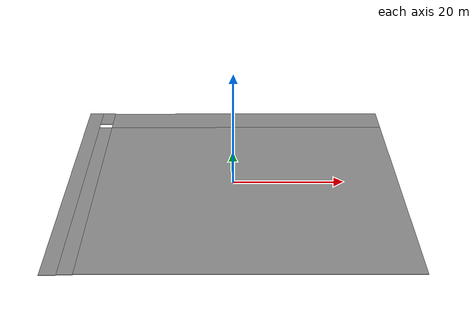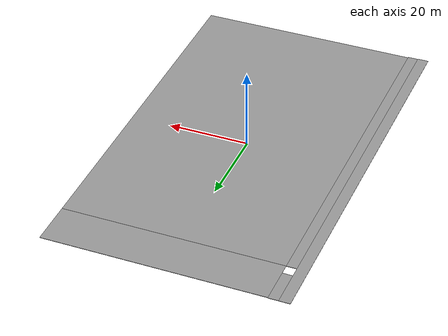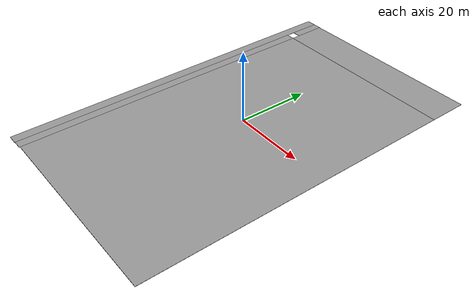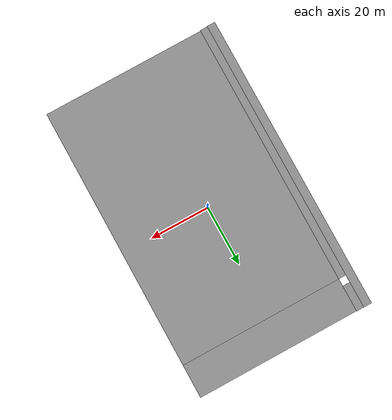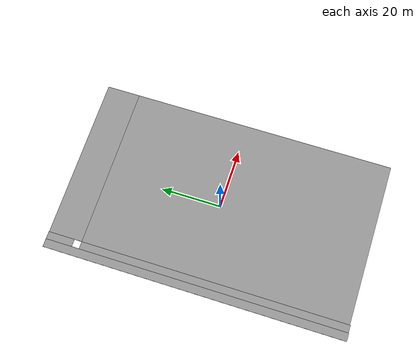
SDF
<?xml version='1.0'?>
<sdf version='1.7'>
  <model name='floor'>
    <link name='Floor_4'>
      <pose>1e-06 -3e-06 0.015 0 -0 0</pose>
      <self_collide>0</self_collide>
      <enable_wind>0</enable_wind>
      <kinematic>0</kinematic>
      <gravity>1</gravity>
      <inertial>
        <mass>1</mass>
        <pose>0 0 0 0 -0 0</pose>
        <inertia>
          <ixx>1</ixx>
          <ixy>0</ixy>
          <ixz>0</ixz>
          <iyy>1</iyy>
          <iyz>0</iyz>
          <izz>1</izz>
        </inertia>
      </inertial>
      <visual name='Floor_4_Visual_1'>
        <pose>2.65 -5.4875 0.05 0 -0 0</pose>
        <geometry>
          <box>
            <size>54.8 88.55 0.1</size>
          </box>
        </geometry>
        <material>
          <script>
            <uri>file://media/materials/scripts/gazebo.material</uri>
            <name>Gazebo/Grey</name>
          </script>
          <ambient>1 1 1 1</ambient>
          <shader type='pixel'>
            <normal_map>__default__</normal_map>
          </shader>
          <diffuse>0.7 0.7 0.7 1</diffuse>
          <specular>0.01 0.01 0.01 1</specular>
          <emissive>0 0 0 1</emissive>
        </material>
        <meta>
          <layer>0</layer>
        </meta>
        <transparency>0</transparency>
        <cast_shadows>1</cast_shadows>
      </visual>
      <visual name='Floor_4_Visual_3'>
        <pose>-26.0025 45.7 0.05 0 -0 0</pose>
        <geometry>
          <box>
            <size>2.515 8.8 0.1</size>
          </box>
        </geometry>
        <material>
          <script>
            <uri>file://media/materials/scripts/gazebo.material</uri>
            <name>Gazebo/Grey</name>
          </script>
          <ambient>1 1 1 1</ambient>
          <shader type='pixel'>
            <normal_map>__default__</normal_map>
          </shader>
          <diffuse>0.7 0.7 0.7 1</diffuse>
          <specular>0.01 0.01 0.01 1</specular>
          <emissive>0 0 0 1</emissive>
        </material>
        <meta>
          <layer>0</layer>
        </meta>
        <transparency>0</transparency>
        <cast_shadows>1</cast_shadows>
      </visual>
      <visual name='ModelPreview_8::Floor_4::visual_4'>
        <pose>-26.0025 -5.6 0.05 0 -0 0</pose>
        <geometry>
          <box>
            <size>2.55 88.8 0.1</size>
          </box>
        </geometry>
        <material>
          <script>
            <uri>file://media/materials/scripts/gazebo.material</uri>
            <name>Gazebo/Grey</name>
          </script>
          <ambient>1 1 1 1</ambient>
          <shader type='pixel'>
            <normal_map>__default__</normal_map>
          </shader>
          <diffuse>0.7 0.7 0.7 1</diffuse>
          <specular>0.01 0.01 0.01 1</specular>
          <emissive>0 0 0 1</emissive>
        </material>
        <meta>
          <layer>0</layer>
        </meta>
        <transparency>0</transparency>
        <cast_shadows>1</cast_shadows>
      </visual>
      <visual name='Floor_4_Visual_2'>
        <pose>2.65 44.39 0.05 0 -0 0</pose>
        <geometry>
          <box>
            <size>54.8 11.205 0.1</size>
          </box>
        </geometry>
        <material>
          <script>
            <uri>file://media/materials/scripts/gazebo.material</uri>
            <name>Gazebo/Grey</name>
          </script>
          <ambient>1 1 1 1</ambient>
          <shader type='pixel'>
            <normal_map>__default__</normal_map>
          </shader>
          <diffuse>0.7 0.7 0.7 1</diffuse>
          <specular>0.01 0.01 0.01 1</specular>
          <emissive>0 0 0 1</emissive>
        </material>
        <meta>
          <layer>0</layer>
        </meta>
        <transparency>0</transparency>
        <cast_shadows>1</cast_shadows>
      </visual>
      <visual name='Floor_4_Visual_0'>
        <pose>-28.63 0 0.05 0 -0 0</pose>
        <geometry>
          <box>
            <size>2.75 100.232 0.1</size>
          </box>
        </geometry>
        <material>
          <script>
            <uri>file://media/materials/scripts/gazebo.material</uri>
            <name>Gazebo/Grey</name>
          </script>
          <ambient>1 1 1 1</ambient>
          <shader type='pixel'>
            <normal_map>__default__</normal_map>
          </shader>
          <diffuse>0.7 0.7 0.7 1</diffuse>
          <specular>0.01 0.01 0.01 1</specular>
          <emissive>0 0 0 1</emissive>
        </material>
        <meta>
          <layer>0</layer>
        </meta>
        <transparency>0</transparency>
        <cast_shadows>1</cast_shadows>
      </visual>
      <collision name='Floor_4_Collision_1'>
        <laser_retro>0</laser_retro>
        <max_contacts>10</max_contacts>
        <pose>1.345 -5.4875 0.05 0 -0 0</pose>
        <geometry>
          <box>
            <size>57.2 88.55 0.1</size>
          </box>
        </geometry>
        <surface>
          <friction>
            <ode>
              <mu>1</mu>
              <mu2>1</mu2>
              <fdir1>0 0 0</fdir1>
              <slip1>0</slip1>
              <slip2>0</slip2>
            </ode>
            <torsional>
              <coefficient>1</coefficient>
              <patch_radius>0</patch_radius>
              <surface_radius>0</surface_radius>
              <use_patch_radius>1</use_patch_radius>
              <ode>
                <slip>0</slip>
              </ode>
            </torsional>
          </friction>
          <bounce>
            <restitution_coefficient>0</restitution_coefficient>
            <threshold>1e+06</threshold>
          </bounce>
          <contact>
            <collide_without_contact>0</collide_without_contact>
            <collide_without_contact_bitmask>1</collide_without_contact_bitmask>
            <collide_bitmask>1</collide_bitmask>
            <ode>
              <soft_cfm>0</soft_cfm>
              <soft_erp>0.2</soft_erp>
              <kp>1e+13</kp>
              <kd>1</kd>
              <max_vel>0.01</max_vel>
              <min_depth>0</min_depth>
            </ode>
            <bullet>
              <split_impulse>1</split_impulse>
              <split_impulse_penetration_threshold>-0.01</split_impulse_penetration_threshold>
              <soft_cfm>0</soft_cfm>
              <soft_erp>0.2</soft_erp>
              <kp>1e+13</kp>
              <kd>1</kd>
            </bullet>
          </contact>
        </surface>
      </collision>
      <collision name='Floor_4_Collision_0'>
        <laser_retro>0</laser_retro>
        <max_contacts>10</max_contacts>
        <pose>-28.63 0 0.05 0 -0 0</pose>
        <geometry>
          <box>
            <size>2.74 100.232 0.1</size>
          </box>
        </geometry>
        <surface>
          <friction>
            <ode>
              <mu>1</mu>
              <mu2>1</mu2>
              <fdir1>0 0 0</fdir1>
              <slip1>0</slip1>
              <slip2>0</slip2>
            </ode>
            <torsional>
              <coefficient>1</coefficient>
              <patch_radius>0</patch_radius>
              <surface_radius>0</surface_radius>
              <use_patch_radius>1</use_patch_radius>
              <ode>
                <slip>0</slip>
              </ode>
            </torsional>
          </friction>
          <bounce>
            <restitution_coefficient>0</restitution_coefficient>
            <threshold>1e+06</threshold>
          </bounce>
          <contact>
            <collide_without_contact>0</collide_without_contact>
            <collide_without_contact_bitmask>1</collide_without_contact_bitmask>
            <collide_bitmask>1</collide_bitmask>
            <ode>
              <soft_cfm>0</soft_cfm>
              <soft_erp>0.2</soft_erp>
              <kp>1e+13</kp>
              <kd>1</kd>
              <max_vel>0.01</max_vel>
              <min_depth>0</min_depth>
            </ode>
            <bullet>
              <split_impulse>1</split_impulse>
              <split_impulse_penetration_threshold>-0.01</split_impulse_penetration_threshold>
              <soft_cfm>0</soft_cfm>
              <soft_erp>0.2</soft_erp>
              <kp>1e+13</kp>
              <kd>1</kd>
            </bullet>
          </contact>
        </surface>
      </collision>
      <collision name='Floor_4_Collision_2'>
        <laser_retro>0</laser_retro>
        <max_contacts>10</max_contacts>
        <pose>2.65 44.39 0.05 0 -0 0</pose>
        <geometry>
          <box>
            <size>54.8 11.205 0.1</size>
          </box>
        </geometry>
        <surface>
          <friction>
            <ode>
              <mu>1</mu>
              <mu2>1</mu2>
              <fdir1>0 0 0</fdir1>
              <slip1>0</slip1>
              <slip2>0</slip2>
            </ode>
            <torsional>
              <coefficient>1</coefficient>
              <patch_radius>0</patch_radius>
              <surface_radius>0</surface_radius>
              <use_patch_radius>1</use_patch_radius>
              <ode>
                <slip>0</slip>
              </ode>
            </torsional>
          </friction>
          <bounce>
            <restitution_coefficient>0</restitution_coefficient>
            <threshold>1e+06</threshold>
          </bounce>
          <contact>
            <collide_without_contact>0</collide_without_contact>
            <collide_without_contact_bitmask>1</collide_without_contact_bitmask>
            <collide_bitmask>1</collide_bitmask>
            <ode>
              <soft_cfm>0</soft_cfm>
              <soft_erp>0.2</soft_erp>
              <kp>1e+13</kp>
              <kd>1</kd>
              <max_vel>0.01</max_vel>
              <min_depth>0</min_depth>
            </ode>
            <bullet>
              <split_impulse>1</split_impulse>
              <split_impulse_penetration_threshold>-0.01</split_impulse_penetration_threshold>
              <soft_cfm>0</soft_cfm>
              <soft_erp>0.2</soft_erp>
              <kp>1e+13</kp>
              <kd>1</kd>
            </bullet>
          </contact>
        </surface>
      </collision>
      <collision name='Floor_4_Collision_3'>
        <laser_retro>0</laser_retro>
        <max_contacts>10</max_contacts>
        <pose>-26.0025 45.7 0.05 0 -0 0</pose>
        <geometry>
          <box>
            <size>2.515 8.8 0.1</size>
          </box>
        </geometry>
        <surface>
          <friction>
            <ode>
              <mu>1</mu>
              <mu2>1</mu2>
              <fdir1>0 0 0</fdir1>
              <slip1>0</slip1>
              <slip2>0</slip2>
            </ode>
            <torsional>
              <coefficient>1</coefficient>
              <patch_radius>0</patch_radius>
              <surface_radius>0</surface_radius>
              <use_patch_radius>1</use_patch_radius>
              <ode>
                <slip>0</slip>
              </ode>
            </torsional>
          </friction>
          <bounce>
            <restitution_coefficient>0</restitution_coefficient>
            <threshold>1e+06</threshold>
          </bounce>
          <contact>
            <collide_without_contact>0</collide_without_contact>
            <collide_without_contact_bitmask>1</collide_without_contact_bitmask>
            <collide_bitmask>1</collide_bitmask>
            <ode>
              <soft_cfm>0</soft_cfm>
              <soft_erp>0.2</soft_erp>
              <kp>1e+13</kp>
              <kd>1</kd>
              <max_vel>0.01</max_vel>
              <min_depth>0</min_depth>
            </ode>
            <bullet>
              <split_impulse>1</split_impulse>
              <split_impulse_penetration_threshold>-0.01</split_impulse_penetration_threshold>
              <soft_cfm>0</soft_cfm>
              <soft_erp>0.2</soft_erp>
              <kp>1e+13</kp>
              <kd>1</kd>
            </bullet>
          </contact>
        </surface>
      </collision>
    </link>
    <static>1</static>
    <allow_auto_disable>1</allow_auto_disable>
  </model>
</sdf>
